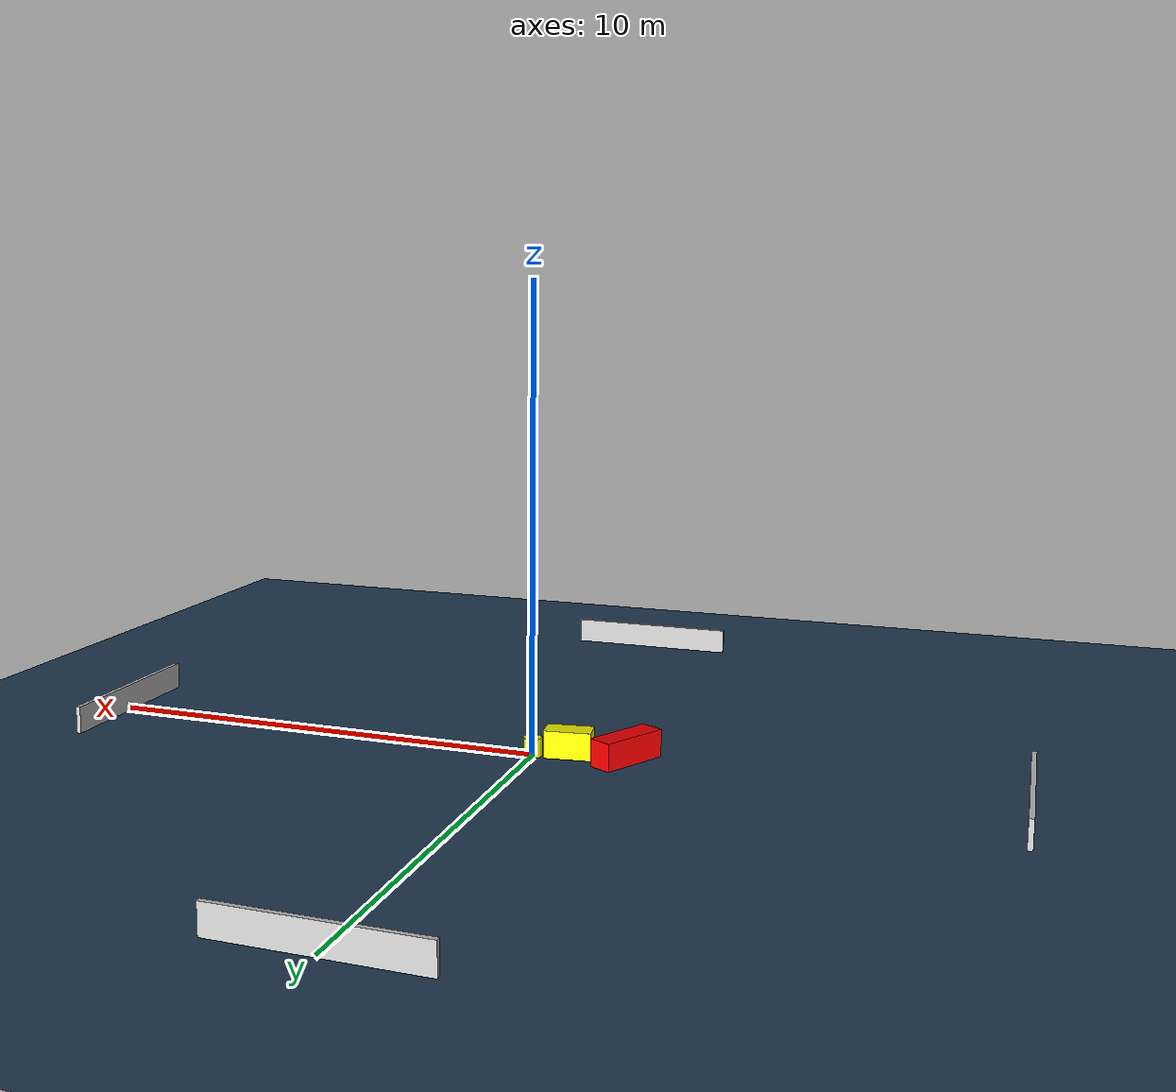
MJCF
<?xml version="1.0" ?>
<mujoco model="generated_environment">
  <option timestep="0.01" integrator="RK4" cone="elliptic"/>
  <default>
    <geom density="1"/>
  </default>
  <asset>
    <texture builtin="gradient" height="3072" name="skybox" rgb1="0.3 0.5 0.7" rgb2="0 0 0" type="skybox" width="512"/>
    <texture builtin="checker" height="300" name="groundplane" rgb1="0.2 0.3 0.4" rgb2="0.1 0.2 0.3" type="2d" width="300"/>
    <material name="groundplane" reflectance="0.2" texrepeat="5 5" texture="groundplane"/>
  </asset>
  <worldbody>
    <light dir="0 0 -1" directional="true" pos="0 0 1.5"/>
    <geom condim="3" friction="0.5 0.005 0.001" material="groundplane" name="floor" pos="0 0 0" size="0 0 0.05" type="plane"/>
    <body name="walls">
      <geom name="wall_1" condim="4" pos="-10.0 0.0 0.3" rgba="0.800000011920929 0.800000011920929 0.800000011920929 1.0" size="0.05 2.0 0.3" type="box"/>
      <geom name="wall_2" condim="4" pos="10.0 0.0 0.3" rgba="0.800000011920929 0.800000011920929 0.800000011920929 1.0" size="0.05 2.0 0.3" type="box"/>
      <geom name="wall_3" condim="4" pos="0.0 -10.0 0.3" rgba="0.800000011920929 0.800000011920929 0.800000011920929 1.0" size="2.0 0.05 0.3" type="box"/>
      <geom name="wall_4" condim="4" pos="0.0 10.0 0.3" rgba="0.800000011920929 0.800000011920929 0.800000011920929 1.0" size="2.0 0.05 0.3" type="box"/>
    </body>
    <body name="robot">
      <joint name="joint_x" type="slide" pos="0 0 0" axis="1 0 0"/>
      <joint name="joint_y" type="slide" pos="0 0 0" axis="0 1 0"/>
      <geom name="robot" type="cylinder" pos="0.0 0.0 0.2" size="0.2 0.2 0.0" mass="5.0" friction="1.0 0.005 0.0001" condim="4" rgba="1.0 1.0 0.0 1.0"/>
    </body>
    <body name="obstacle_1_movable">
      <geom name="obstacle_1_movable" condim="4" pos="-0.7374093406574137 -0.22087877315799612 0.3" euler="0 0 277.3086682125078" friction="0.0 0.005 0.001" rgba="1.0 1.0 0.0 1.0" size="0.2658025344161243 0.5046975863974725 0.3" type="box" mass="0.1"/>
      <joint type="free"/>
    </body>
    <body name="obstacle_2_static">
      <geom name="obstacle_2_static" condim="4" pos="-1.9704130610584998 -0.29071116671899205 0.3" euler="0 0 150.75572576331047" friction="0.0 0.005 0.001" rgba="1.0 0.0 0.0 1.0" size="0.26127004643889196 0.7825380590463697 0.3" type="box"/>
    </body>
  </worldbody>
  <actuator>
    <motor name="actuator_x" joint="joint_x" gear="1" ctrlrange="-1 1"/>
    <motor name="actuator_y" joint="joint_y" gear="1" ctrlrange="-1 1"/>
  </actuator>
</mujoco>
